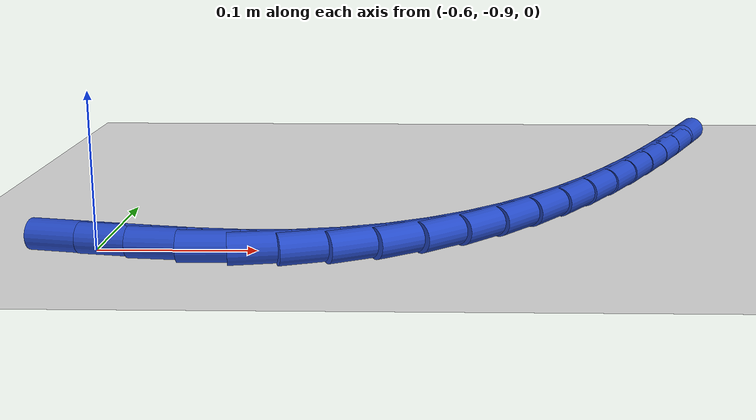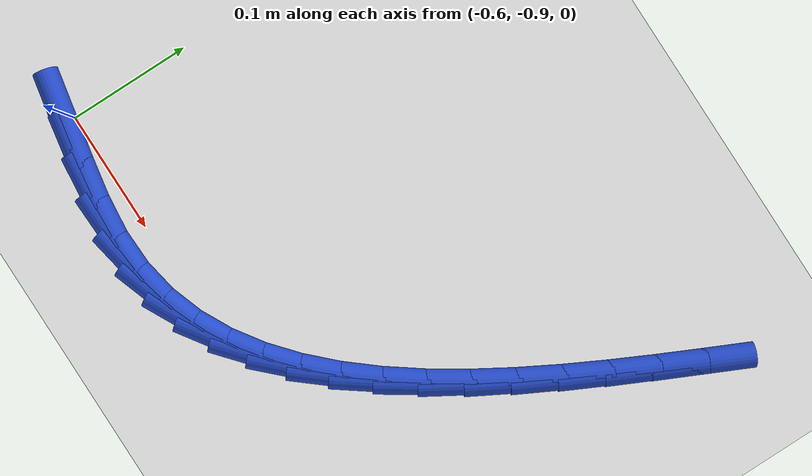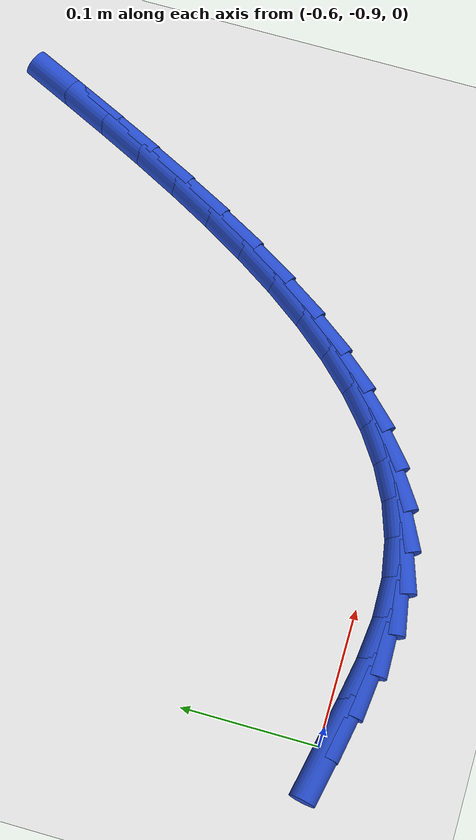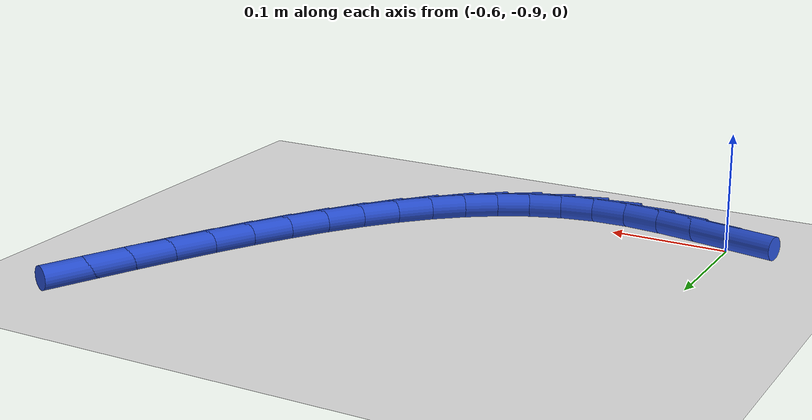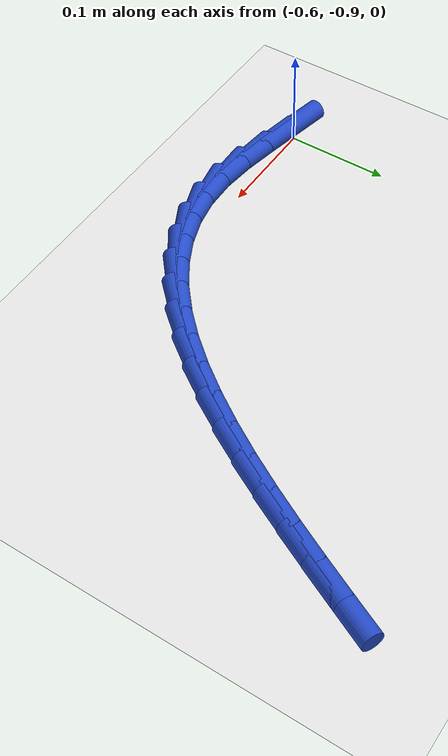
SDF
<sdf version="1.6">
 <world name="default">
  <model name="ground_plane">
   <static>1</static>
   <link name="link">
    <collision name="collision">
     <geometry><plane><normal>0 0 1</normal><size>100 100</size></plane></geometry>
     <surface><friction><ode><mu>100</mu><mu2>50</mu2></ode></friction></surface>
    </collision>
    <visual name="visual">
     <cast_shadows>0</cast_shadows>
     <geometry><plane><normal>0 0 1</normal><size>100 100</size></plane></geometry>
     <material>
      <script><uri>file://media/materials/scripts/gazebo.material</uri><name>Gazebo/WhiteGlow</name></script>
     </material>
    </visual>
   </link>
  </model>
  <model name="line">
   <link name="link_192">
    <pose>-0.6010921224338469 -0.9064117323683771 0.01 0 1.57 -0.1985787172604711</pose>
    <collision name="collision">
     <geometry><cylinder><radius>0.01</radius><length>0.08</length></cylinder></geometry>
    </collision>
    <visual name="visual">
     <material>
      <script><name>Gazebo/Blue</name><uri>file://media/materials/scripts/gazebo.material</uri></script>
     </material>
     <geometry><cylinder><radius>0.01</radius><length>0.08</length></cylinder></geometry>
    </visual>
   </link>
   <link name="link_193">
    <pose>-0.5684459059491107 -0.9129811558294452 0.01 0 1.57 -0.17726386555822427</pose>
    <collision name="collision">
     <geometry><cylinder><radius>0.01</radius><length>0.08</length></cylinder></geometry>
    </collision>
    <visual name="visual">
     <material>
      <script><name>Gazebo/Blue</name><uri>file://media/materials/scripts/gazebo.material</uri></script>
     </material>
     <geometry><cylinder><radius>0.01</radius><length>0.08</length></cylinder></geometry>
    </visual>
   </link>
   <link name="link_194">
    <pose>-0.5359299947380549 -0.9188061924994675 0.01 0 1.57 -0.10291301367045985</pose>
    <collision name="collision">
     <geometry><cylinder><radius>0.01</radius><length>0.08</length></cylinder></geometry>
    </collision>
    <visual name="visual">
     <material>
      <script><name>Gazebo/Blue</name><uri>file://media/materials/scripts/gazebo.material</uri></script>
     </material>
     <geometry><cylinder><radius>0.01</radius><length>0.08</length></cylinder></geometry>
    </visual>
   </link>
   <link name="link_195">
    <pose>-0.5042621182509497 -0.9220767836393843 0.01 0 1.57 0.029715605766444088</pose>
    <collision name="collision">
     <geometry><cylinder><radius>0.01</radius><length>0.08</length></cylinder></geometry>
    </collision>
    <visual name="visual">
     <material>
      <script><name>Gazebo/Blue</name><uri>file://media/materials/scripts/gazebo.material</uri></script>
     </material>
     <geometry><cylinder><radius>0.01</radius><length>0.08</length></cylinder></geometry>
    </visual>
   </link>
   <link name="link_196">
    <pose>-0.4740859846515085 -0.921179817522067 0.01 0 1.57 0.18391607860517287</pose>
    <collision name="collision">
     <geometry><cylinder><radius>0.01</radius><length>0.08</length></cylinder></geometry>
    </collision>
    <visual name="visual">
     <material>
      <script><name>Gazebo/Blue</name><uri>file://media/materials/scripts/gazebo.material</uri></script>
     </material>
     <geometry><cylinder><radius>0.01</radius><length>0.08</length></cylinder></geometry>
    </visual>
   </link>
   <link name="link_197">
    <pose>-0.445531879985703 -0.9158682347635838 0.01 0 1.57 0.33461464123784396</pose>
    <collision name="collision">
     <geometry><cylinder><radius>0.01</radius><length>0.08</length></cylinder></geometry>
    </collision>
    <visual name="visual">
     <material>
      <script><name>Gazebo/Blue</name><uri>file://media/materials/scripts/gazebo.material</uri></script>
     </material>
     <geometry><cylinder><radius>0.01</radius><length>0.08</length></cylinder></geometry>
    </visual>
   </link>
   <link name="link_198">
    <pose>-0.41851250791101613 -0.9064738932517122 0.01 0 1.57 0.4747469302959547</pose>
    <collision name="collision">
     <geometry><cylinder><radius>0.01</radius><length>0.08</length></cylinder></geometry>
    </collision>
    <visual name="visual">
     <material>
      <script><name>Gazebo/Blue</name><uri>file://media/materials/scripts/gazebo.material</uri></script>
     </material>
     <geometry><cylinder><radius>0.01</radius><length>0.08</length></cylinder></geometry>
    </visual>
   </link>
   <link name="link_199">
    <pose>-0.3929397874681319 -0.8933307384890319 0.01 0 1.57 0.5997814245905738</pose>
    <collision name="collision">
     <geometry><cylinder><radius>0.01</radius><length>0.08</length></cylinder></geometry>
    </collision>
    <visual name="visual">
     <material>
      <script><name>Gazebo/Blue</name><uri>file://media/materials/scripts/gazebo.material</uri></script>
     </material>
     <geometry><cylinder><radius>0.01</radius><length>0.08</length></cylinder></geometry>
    </visual>
   </link>
   <link name="link_200">
    <pose>-0.3687256376977352 -0.8767727159781221 0.01 0 1.57 0.7079462423123184</pose>
    <collision name="collision">
     <geometry><cylinder><radius>0.01</radius><length>0.08</length></cylinder></geometry>
    </collision>
    <visual name="visual">
     <material>
      <script><name>Gazebo/Blue</name><uri>file://media/materials/scripts/gazebo.material</uri></script>
     </material>
     <geometry><cylinder><radius>0.01</radius><length>0.08</length></cylinder></geometry>
    </visual>
   </link>
   <link name="link_201">
    <pose>-0.3457819776405104 -0.8571337712215625 0.01 0 1.57 0.799546940595235</pose>
    <collision name="collision">
     <geometry><cylinder><radius>0.01</radius><length>0.08</length></cylinder></geometry>
    </collision>
    <visual name="visual">
     <material>
      <script><name>Gazebo/Blue</name><uri>file://media/materials/scripts/gazebo.material</uri></script>
     </material>
     <geometry><cylinder><radius>0.01</radius><length>0.08</length></cylinder></geometry>
    </visual>
   </link>
   <link name="link_202">
    <pose>-0.3240207263371438 -0.8347478497219337 0.01 0 1.57 0.8760311700320838</pose>
    <collision name="collision">
     <geometry><cylinder><radius>0.01</radius><length>0.08</length></cylinder></geometry>
    </collision>
    <visual name="visual">
     <material>
      <script><name>Gazebo/Blue</name><uri>file://media/materials/scripts/gazebo.material</uri></script>
     </material>
     <geometry><cylinder><radius>0.01</radius><length>0.08</length></cylinder></geometry>
    </visual>
   </link>
   <link name="link_203">
    <pose>-0.3033538028283195 -0.8099488969818148 0.01 0 1.57 0.939255478331377</pose>
    <collision name="collision">
     <geometry><cylinder><radius>0.01</radius><length>0.08</length></cylinder></geometry>
    </collision>
    <visual name="visual">
     <material>
      <script><name>Gazebo/Blue</name><uri>file://media/materials/scripts/gazebo.material</uri></script>
     </material>
     <geometry><cylinder><radius>0.01</radius><length>0.08</length></cylinder></geometry>
    </visual>
   </link>
   <link name="link_204">
    <pose>-0.2836931261547224 -0.7830708585037857 0.01 0 1.57 0.9910528576194727</pose>
    <collision name="collision">
     <geometry><cylinder><radius>0.01</radius><length>0.08</length></cylinder></geometry>
    </collision>
    <visual name="visual">
     <material>
      <script><name>Gazebo/Blue</name><uri>file://media/materials/scripts/gazebo.material</uri></script>
     </material>
     <geometry><cylinder><radius>0.01</radius><length>0.08</length></cylinder></geometry>
    </visual>
   </link>
   <link name="link_205">
    <pose>-0.2649506153570376 -0.754447679790426 0.01 0 1.57 1.0330299182426903</pose>
    <collision name="collision">
     <geometry><cylinder><radius>0.01</radius><length>0.08</length></cylinder></geometry>
    </collision>
    <visual name="visual">
     <material>
      <script><name>Gazebo/Blue</name><uri>file://media/materials/scripts/gazebo.material</uri></script>
     </material>
     <geometry><cylinder><radius>0.01</radius><length>0.08</length></cylinder></geometry>
    </visual>
   </link>
   <link name="link_206">
    <pose>-0.24703818947594955 -0.7244133063443149 0.01 0 1.57 1.0664975889569273</pose>
    <collision name="collision">
     <geometry><cylinder><radius>0.01</radius><length>0.08</length></cylinder></geometry>
    </collision>
    <visual name="visual">
     <material>
      <script><name>Gazebo/Blue</name><uri>file://media/materials/scripts/gazebo.material</uri></script>
     </material>
     <geometry><cylinder><radius>0.01</radius><length>0.08</length></cylinder></geometry>
    </visual>
   </link>
   <link name="link_207">
    <pose>-0.22986776755214397 -0.6933016836680332 0.01 0 1.57 1.0924654278593517</pose>
    <collision name="collision">
     <geometry><cylinder><radius>0.01</radius><length>0.08</length></cylinder></geometry>
    </collision>
    <visual name="visual">
     <material>
      <script><name>Gazebo/Blue</name><uri>file://media/materials/scripts/gazebo.material</uri></script>
     </material>
     <geometry><cylinder><radius>0.01</radius><length>0.08</length></cylinder></geometry>
    </visual>
   </link>
   <link name="link_208">
    <pose>-0.2133512686263054 -0.6614467572641602 0.01 0 1.57 1.111658805811135</pose>
    <collision name="collision">
     <geometry><cylinder><radius>0.01</radius><length>0.08</length></cylinder></geometry>
    </collision>
    <visual name="visual">
     <material>
      <script><name>Gazebo/Blue</name><uri>file://media/materials/scripts/gazebo.material</uri></script>
     </material>
     <geometry><cylinder><radius>0.01</radius><length>0.08</length></cylinder></geometry>
    </visual>
   </link>
   <link name="link_209">
    <pose>-0.19740061173911877 -0.6291824726352757 0.01 0 1.57 1.1245376810955792</pose>
    <collision name="collision">
     <geometry><cylinder><radius>0.01</radius><length>0.08</length></cylinder></geometry>
    </collision>
    <visual name="visual">
     <material>
      <script><name>Gazebo/Blue</name><uri>file://media/materials/scripts/gazebo.material</uri></script>
     </material>
     <geometry><cylinder><radius>0.01</radius><length>0.08</length></cylinder></geometry>
    </visual>
   </link>
   <link name="link_210">
    <pose>-0.18192771593126858 -0.5968427752839583 0.01 0 1.57 1.1313060470251062</pose>
    <collision name="collision">
     <geometry><cylinder><radius>0.01</radius><length>0.08</length></cylinder></geometry>
    </collision>
    <visual name="visual">
     <material>
      <script><name>Gazebo/Blue</name><uri>file://media/materials/scripts/gazebo.material</uri></script>
     </material>
     <geometry><cylinder><radius>0.01</radius><length>0.08</length></cylinder></geometry>
    </visual>
   </link>
  </model>
 </world>
</sdf>
